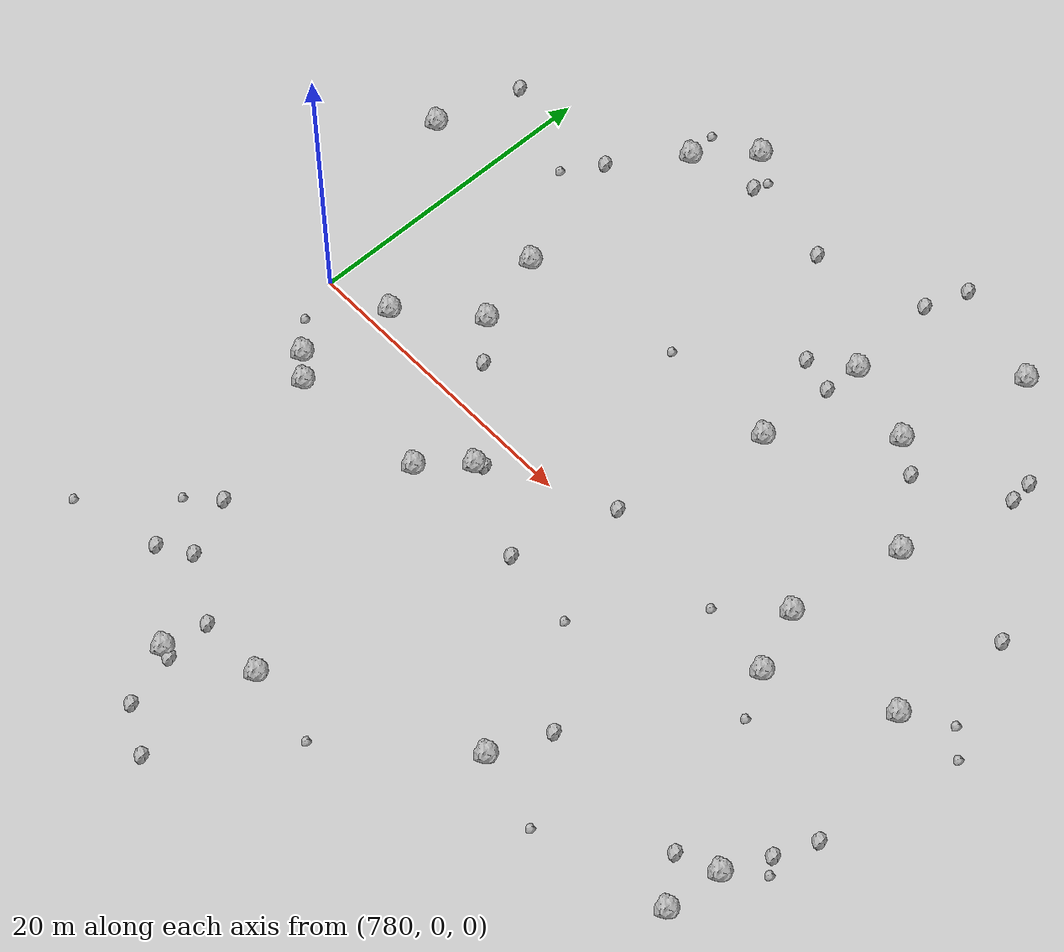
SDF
<sdf version="1.6">
 <world name="default">
  <include><uri>model://sun</uri></include>
  <model name="rock1_20_4">
   <include><uri>model://rock1</uri><pose>775.339269071418 12.921297034976341 0.5 0 0 0</pose></include>
  </model>
  <model name="rock1_20_5">
   <include><uri>model://rock1</uri><pose>787.2917721106735 10.111913110909484 0.5 0 0 0</pose></include>
  </model>
  <model name="rock1_20_6">
   <include><uri>model://rock1</uri><pose>793.0155163837908 -23.996484677385226 0.5 0 0 0</pose></include>
  </model>
  <model name="rock1_20_7">
   <include><uri>model://rock1</uri><pose>816.0138665612153 4.479477950532917 0.5 0 0 0</pose></include>
  </model>
  <model name="rock1_20_8">
   <include><uri>model://rock1</uri><pose>795.9474641151206 -2.3651333919486675 0.5 0 0 0</pose></include>
  </model>
  <model name="rock1_20_9">
   <include><uri>model://rock1</uri><pose>825.2415091957029 -10.214240864943719 0.5 0 0 0</pose></include>
  </model>
  <model name="rock1_20_10">
   <include><uri>model://rock1</uri><pose>788.1321164211465 22.99632525790021 0.5 0 0 0</pose></include>
  </model>
  <model name="rock1_20_11">
   <include><uri>model://rock1</uri><pose>791.0360635452004 26.331189583203297 0.5 0 0 0</pose></include>
  </model>
  <model name="rock1_20_12">
   <include><uri>model://rock1</uri><pose>782.90697666778 -4.722056204125927 0.5 0 0 0</pose></include>
  </model>
  <model name="rock1_20_13">
   <include><uri>model://rock1</uri><pose>784.4760032333658 -5.991057786890565 0.5 0 0 0</pose></include>
  </model>
  <model name="rock1_20_14">
   <include><uri>model://rock1</uri><pose>824.9381181813018 4.268259380454374 0.5 0 0 0</pose></include>
  </model>
  <model name="rock1_20_15">
   <include><uri>model://rock1</uri><pose>806.6439361252706 19.321683354125838 0.5 0 0 0</pose></include>
  </model>
  <model name="rock1_20_16">
   <include><uri>model://rock1</uri><pose>817.6618547519577 0.45492382814699894 0.5 0 0 0</pose></include>
  </model>
  <model name="rock1_20_17">
   <include><uri>model://rock1</uri><pose>810.8897068608509 -14.90371208954185 0.5 0 0 0</pose></include>
  </model>
  <model name="rock1_20_18">
   <include><uri>model://rock1</uri><pose>824.874986000427 -13.972138577381337 0.5 0 0 0</pose></include>
  </model>
  <model name="rock1_20_19">
   <include><uri>model://rock1</uri><pose>793.5458341273408 -5.119048277854482 0.5 0 0 0</pose></include>
  </model>
  <model name="rock1_20_20">
   <include><uri>model://rock1</uri><pose>788.6531202273981 5.223764255796141 0.5 0 0 0</pose></include>
  </model>
  <model name="rock1_20_21">
   <include><uri>model://rock1</uri><pose>784.1218062809327 1.2694596163773788 0.5 0 0 0</pose></include>
  </model>
  <model name="rock1_20_22">
   <include><uri>model://rock1</uri><pose>797.9601349946458 -21.092934755409154 0.5 0 0 0</pose></include>
  </model>
  <model name="rock1_20_23">
   <include><uri>model://rock1</uri><pose>817.4176370624299 12.106459854049412 0.5 0 0 0</pose></include>
  </model>
  <model name="rock1_20_24">
   <include><uri>model://rock1</uri><pose>811.9646387833577 17.721853578500145 0.5 0 0 0</pose></include>
  </model>
  <model name="rock1_20_25">
   <include><uri>model://rock1</uri><pose>814.0758620666221 26.310730004190837 0.5 0 0 0</pose></include>
  </model>
  <model name="rock1_20_26">
   <include><uri>model://rock1</uri><pose>806.2034569561499 11.742411254811827 0.5 0 0 0</pose></include>
  </model>
  <model name="rock2_20_0">
   <include><uri>model://rock2</uri><pose>784.9766606895943 18.548569091164595 0.3 0 0 0</pose></include>
  </model>
  <model name="rock2_20_1">
   <include><uri>model://rock2</uri><pose>819.3336219383406 21.03628652728866 0.3 0 0 0</pose></include>
  </model>
  <model name="rock2_20_2">
   <include><uri>model://rock2</uri><pose>787.3844501770129 -19.924440937362867 0.3 0 0 0</pose></include>
  </model>
  <model name="rock2_20_3">
   <include><uri>model://rock2</uri><pose>792.6254435844967 24.141394094465824 0.3 0 0 0</pose></include>
  </model>
  <model name="rock2_20_4">
   <include><uri>model://rock2</uri><pose>806.1867887062705 25.588860286781483 0.3 0 0 0</pose></include>
  </model>
  <model name="rock2_20_5">
   <include><uri>model://rock2</uri><pose>807.2039562277329 28.369326444832865 0.3 0 0 0</pose></include>
  </model>
  <model name="rock2_20_6">
   <include><uri>model://rock2</uri><pose>776.9009746990049 18.643948359011453 0.3 0 0 0</pose></include>
  </model>
  <model name="rock2_20_7">
   <include><uri>model://rock2</uri><pose>804.0515374184608 17.49288077758773 0.3 0 0 0</pose></include>
  </model>
  <model name="rock2_20_8">
   <include><uri>model://rock2</uri><pose>819.4832987361992 19.505055860471728 0.3 0 0 0</pose></include>
  </model>
  <model name="rock2_20_9">
   <include><uri>model://rock2</uri><pose>826.5094989375746 -7.335818339516916 0.3 0 0 0</pose></include>
  </model>
  <model name="rock2_20_10">
   <include><uri>model://rock2</uri><pose>794.6175679504018 -27.68448040277644 0.3 0 0 0</pose></include>
  </model>
  <model name="rock2_20_11">
   <include><uri>model://rock2</uri><pose>789.351473438062 -18.648206667002903 0.3 0 0 0</pose></include>
  </model>
  <model name="rock2_20_12">
   <include><uri>model://rock2</uri><pose>790.9017674102796 2.90549442146321 0.3 0 0 0</pose></include>
  </model>
  <model name="rock2_20_13">
   <include><uri>model://rock2</uri><pose>798.9711051007309 23.47242366082964 0.3 0 0 0</pose></include>
  </model>
  <model name="rock2_20_14">
   <include><uri>model://rock2</uri><pose>825.682369213416 12.069629369880339 0.3 0 0 0</pose></include>
  </model>
  <model name="rock2_20_15">
   <include><uri>model://rock2</uri><pose>812.4229157641723 -11.066042988300701 0.3 0 0 0</pose></include>
  </model>
  <model name="rock2_20_16">
   <include><uri>model://rock2</uri><pose>793.5282197089817 -21.10175377942535 0.3 0 0 0</pose></include>
  </model>
  <model name="rock2_20_17">
   <include><uri>model://rock2</uri><pose>797.5985540473446 -29.357787361537106 0.3 0 0 0</pose></include>
  </model>
  <model name="rock2_20_18">
   <include><uri>model://rock2</uri><pose>827.5949603545015 -4.751583983844853 0.3 0 0 0</pose></include>
  </model>
  <model name="rock2_20_19">
   <include><uri>model://rock2</uri><pose>796.4163899681529 -2.0070116393977386 0.3 0 0 0</pose></include>
  </model>
  <model name="rock2_20_20">
   <include><uri>model://rock2</uri><pose>802.1144856306557 -5.010771059372864 0.3 0 0 0</pose></include>
  </model>
  <model name="rock2_20_21">
   <include><uri>model://rock2</uri><pose>804.0291342866258 1.801525453711129 0.3 0 0 0</pose></include>
  </model>
  <model name="rock2_20_22">
   <include><uri>model://rock2</uri><pose>814.128889207166 16.29604500425944 0.3 0 0 0</pose></include>
  </model>
  <model name="rock2_20_23">
   <include><uri>model://rock2</uri><pose>793.7410189647712 -24.162490273560344 0.3 0 0 0</pose></include>
  </model>
  <model name="rock2_20_24">
   <include><uri>model://rock2</uri><pose>806.4338080189443 16.90634910827353 0.3 0 0 0</pose></include>
  </model>
  <model name="rock2_20_25">
   <include><uri>model://rock2</uri><pose>787.6918457974615 -14.977198914960205 0.3 0 0 0</pose></include>
  </model>
  <model name="rock2_20_26">
   <include><uri>model://rock2</uri><pose>822.6388195259792 -11.22523929670993 0.3 0 0 0</pose></include>
  </model>
  <model name="rock3_20_0">
   <include><uri>model://rock3</uri><pose>781.5361315577597 -21.5049172885457 0.2 0 0 0</pose></include>
  </model>
  <model name="rock3_20_1">
   <include><uri>model://rock3</uri><pose>807.4429970450757 -5.699509657780865 0.2 0 0 0</pose></include>
  </model>
  <model name="rock3_20_2">
   <include><uri>model://rock3</uri><pose>781.0474582419797 -2.9848567510524795 0.2 0 0 0</pose></include>
  </model>
  <model name="rock3_20_3">
   <include><uri>model://rock3</uri><pose>787.8961091576341 24.99800552027233 0.2 0 0 0</pose></include>
  </model>
  <model name="rock3_20_4">
   <include><uri>model://rock3</uri><pose>803.2397520644682 -21.878229463266337 0.2 0 0 0</pose></include>
  </model>
  <model name="rock3_20_5">
   <include><uri>model://rock3</uri><pose>783.3784086858659 16.101265290870224 0.2 0 0 0</pose></include>
  </model>
  <model name="rock3_20_6">
   <include><uri>model://rock3</uri><pose>798.0320403547037 11.877741601955933 0.2 0 0 0</pose></include>
  </model>
  <model name="rock3_20_7">
   <include><uri>model://rock3</uri><pose>815.9842101628244 -16.187532245480433 0.2 0 0 0</pose></include>
  </model>
  <model name="rock3_20_8">
   <include><uri>model://rock3</uri><pose>819.1835319632321 -2.4187211989297417 0.2 0 0 0</pose></include>
  </model>
  <model name="rock3_20_9">
   <include><uri>model://rock3</uri><pose>792.9271755881203 25.04067515926961 0.2 0 0 0</pose></include>
  </model>
  <model name="rock3_20_10">
   <include><uri>model://rock3</uri><pose>827.699479829894 6.121501071427332 0.2 0 0 0</pose></include>
  </model>
  <model name="rock3_20_11">
   <include><uri>model://rock3</uri><pose>812.6000158468071 1.1645949988022721 0.2 0 0 0</pose></include>
  </model>
  <model name="rock3_20_12">
   <include><uri>model://rock3</uri><pose>829.3056818199086 4.651210985700878 0.2 0 0 0</pose></include>
  </model>
  <model name="rock3_20_13">
   <include><uri>model://rock3</uri><pose>827.1968500607916 -8.317742600004717 0.2 0 0 0</pose></include>
  </model>
  <model name="rock3_20_14">
   <include><uri>model://rock3</uri><pose>785.86937315593 -16.672142897289664 0.2 0 0 0</pose></include>
  </model>
 </world>
</sdf>
